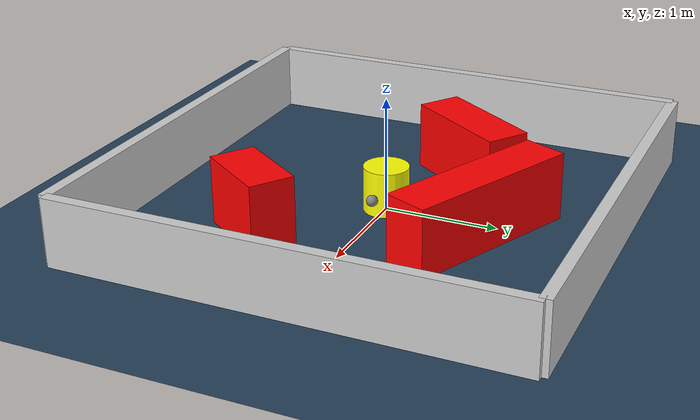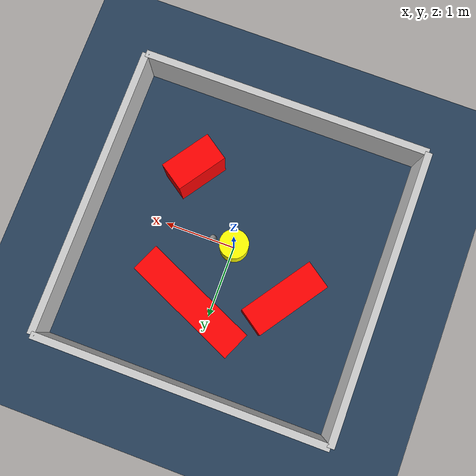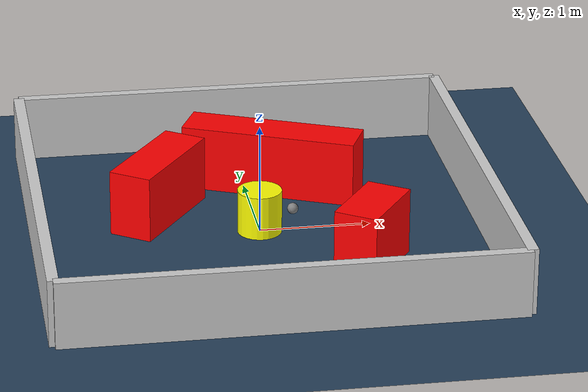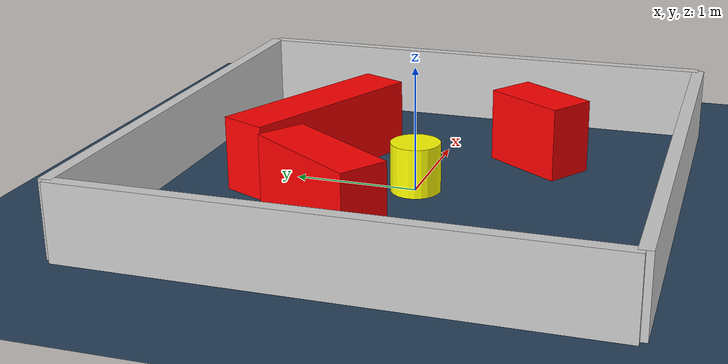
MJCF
<?xml version="1.0" ?>
<mujoco model="generated_environment">
  <option timestep="0.01" integrator="RK4" cone="elliptic"/>
  <default>
    <geom density="1"/>
  </default>
  <asset>
    <texture builtin="gradient" height="3072" rgb1="0.3 0.5 0.7" rgb2="0 0 0" type="skybox" width="512"/>
    <texture builtin="checker" height="300" mark="edge" markrgb="0.8 0.8 0.8" name="groundplane" rgb1="0.2 0.3 0.4" rgb2="0.1 0.2 0.3" type="2d" width="300"/>
    <material name="groundplane" reflectance="0.2" texrepeat="5 5" texture="groundplane" texuniform="true"/>
    <material name="robot" rgba="0.0 1.0 0.0 1"/>
  </asset>
  <worldbody>
    <light dir="0 0 -1" directional="true" pos="0 0 1.5"/>
    <geom condim="4" friction="1.0 0.005 0.001" material="groundplane" name="floor" size="0 0 0.05" type="plane"/>
    <body name="walls">
      <geom name="wall_1" condim="4" pos="-2.0 0.0 0.3" rgba="0.800000011920929 0.800000011920929 0.800000011920929 1.0" size="0.05 2.0 0.3" type="box"/>
      <geom name="wall_2" condim="4" pos="2.0 0.0 0.3" rgba="0.800000011920929 0.800000011920929 0.800000011920929 1.0" size="0.05 2.0 0.3" type="box"/>
      <geom name="wall_3" condim="4" pos="0.0 -2.0 0.3" rgba="0.800000011920929 0.800000011920929 0.800000011920929 1.0" size="2.0 0.05 0.3" type="box"/>
      <geom name="wall_4" condim="4" pos="0.0 2.0 0.3" rgba="0.800000011920929 0.800000011920929 0.800000011920929 1.0" size="2.0 0.05 0.3" type="box"/>
    </body>
    <body name="robot">
      <joint name="joint_x" type="slide" pos="0 0 0" axis="1 0 0"/>
      <joint name="joint_y" type="slide" pos="0 0 0" axis="0 1 0"/>
      <geom name="robot" type="sphere" pos="0.3 0.0 0.2" size="0.05" mass="5." friction="1.0 0.005 0.0001" condim="4" rgba="0.5 0.5 0.5 1.0"/>
      <site name="sensor_ball"/>
    </body>
    <body name="obstacle_movable_1">
      <geom name="obstacle_movable_1" condim="4" pos="0.0 0.0 0.2" euler="0 0 0.0" friction="1.0 0.005 0.001" rgba="1.0 1.0 0.0 1.0" size="0.2 0.2 0.0" type="cylinder" mass="0.1"/>
      <joint type="free"/>
    </body>
    <body name="obstacle_2_static">
      <geom name="obstacle_2_static" condim="4" pos="-0.8582536517752708 0.4606029480685281 0.3" euler="0 0 55.29184011189848" friction="1.0 0.005 0.001" rgba="1 0 0 1" size="0.532292020614385 0.2 0.3" type="box"/>
    </body>
    <body name="obstacle_3_static">
      <geom name="obstacle_3_static" condim="4" pos="0.2575767002489202 0.9144072433959207 0.3" euler="0 0 155.99031633283303" friction="1.0 0.005 0.001" rgba="1 0 0 1" size="0.8139972116782221 0.2 0.3" type="box"/>
    </body>
    <body name="obstacle_4_static">
      <geom name="obstacle_4_static" condim="4" pos="0.8662147475514745 -0.8153640477250477 0.3" euler="0 0 55.436318680760806" friction="1.0 0.005 0.001" rgba="1 0 0 1" size="0.36166287618877774 0.2 0.3" type="box"/>
    </body>
  </worldbody>
  <actuator>
    <motor name="actuator_x" joint="joint_x" gear="1" ctrlrange="-1 1"/>
    <motor name="actuator_y" joint="joint_y" gear="1" ctrlrange="-1 1"/>
  </actuator>
</mujoco>
